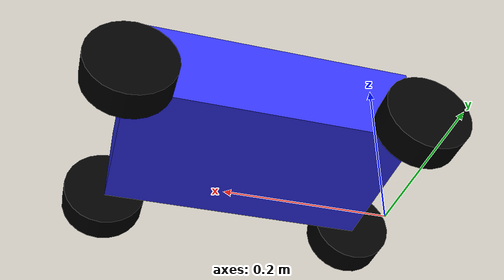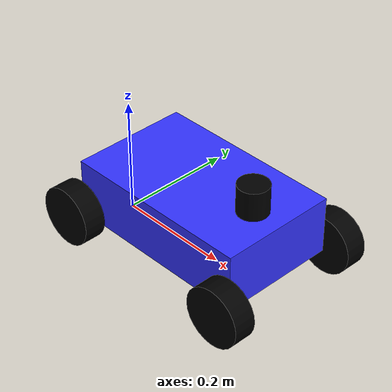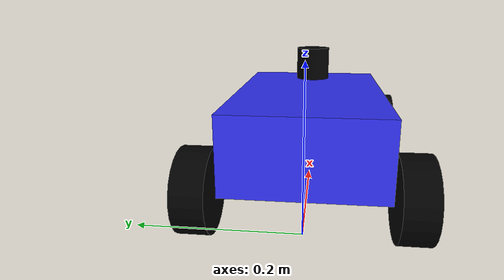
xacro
<?xml version="1.0"?>

<!-- A simple model of the racecar for rviz -->

<robot xmlns:xacro="http://www.ros.org/wiki/xacro" name="racecar">

  <xacro:property name="wheelbase" value="0.3302" />
  <xacro:property name="width" value="0.2032" />
  <xacro:property name="height" value="0.1" />
  <xacro:property name="ground_offset" value="0.04" />
  <xacro:property name="wheel_radius" value="0.0508" />
  <xacro:property name="wheel_length" value="0.0381" />
  <xacro:property name="laser_distance_from_base_link" value="0.275" />
  <xacro:property name="laser_height" value="0.05" />
  <xacro:property name="laser_radius" value="0.026" />
  <xacro:property name="car_name" value="ego_racecar" />

  <xacro:include filename="inertial_macros.xacro"/>
  <!-- For Gazebo simulation -->
  <xacro:include filename="gazebo_control.xacro"/>
  <!-- Lidar -->
  <xacro:include filename="lidar.xacro"/>

  <!-- Colors -->
  <material name="white">
    <color rgba="1.0 1.0 1.0 1.0"/>
  </material>

  <material name="orange">
    <color rgba="1.0 0.3 0.1 1.0"/>
  </material>

  <material name="blue">
    <color rgba="0.2 0.2 1.0 1.0"/>
  </material>

  <material name="black">
    <color rgba="0.0 0.0 0.0 1.0"/>
  </material>

  <material name="red">
    <color rgba="1.0 0.0 0.0 1.0"/>
  </material>

  <!-- Base link -->
  <link name="${car_name}/base_link">
    <visual>
      <origin xyz="${wheelbase/2} 0.0 ${ground_offset+height/2}"/>
      <geometry>
        <box size="${wheelbase} ${width} ${height}"/>
      </geometry>
      <material name="blue"/>
    </visual>
    <collision>
      <origin xyz="${wheelbase/2} 0 ${ground_offset+height/2}"/>
      <geometry>
        <box size="${wheelbase} ${width} ${height}"/>
      </geometry>
    </collision>
    <xacro:inertial_box mass="0.5" x="${wheelbase}" y="${width}" z="${height}">
      <origin xyz="${wheelbase/2} 0.0 ${ground_offset+height/2}" rpy="0.0 0.0 0.0"/>
    </xacro:inertial_box>
  </link>
  <gazebo reference="${car_name}/base_link">
    <material>Gazebo/Blue</material>
  </gazebo>

  <!-- Back left wheel -->
  <joint name="base_to_back_left_wheel" type="continuous">
    <parent link="${car_name}/base_link"/>
    <child link="${car_name}/back_left_wheel"/>
    <origin xyz="0 ${(wheel_length+width)/2} ${wheel_radius}" rpy="-${pi/2} 0.0 0.0"/>
    <axis xyz="0.0 0.0 1.0"/>
  </joint>

  <link name="${car_name}/back_left_wheel">
    <visual>
      <geometry>
        <cylinder radius="${wheel_radius}" length="${wheel_length}"/>
      </geometry>
      <material name="black"/>
    </visual>
    <collision>
      <geometry>
        <cylinder radius="${wheel_radius}" length="${wheel_length}"/>
      </geometry>
    </collision>
    <xacro:inertial_cylinder mass="0.1" length="${wheel_length}" radius="${wheel_radius}">
      <origin xyz="0.0 0.0 0.0" rpy="0.0 0.0 0.0"/>
    </xacro:inertial_cylinder>
  </link>
  <gazebo reference="${car_name}/back_left_wheel">
    <material>Gazebo/Black</material>
    <mu1 value="0.001"/>
    <mu2 value="0.001"/>
  </gazebo>

  <!-- Back right wheel -->
  <joint name="base_to_back_right_wheel" type="continuous">
    <parent link="${car_name}/base_link"/>
    <child link="${car_name}/back_right_wheel"/>
    <origin xyz="0 ${-(wheel_length+width)/2} ${wheel_radius}" rpy="${pi/2} 0.0 0.0"/>
    <axis xyz="0.0 0.0 -1.0"/>
  </joint>

  <link name="${car_name}/back_right_wheel">
    <visual>
      <geometry>
        <cylinder radius="${wheel_radius}" length="${wheel_length}"/>
      </geometry>
      <material name="black"/>
    </visual>
    <collision>
      <geometry>
        <cylinder radius="${wheel_radius}" length="${wheel_length}"/>
      </geometry>
    </collision>
    <xacro:inertial_cylinder mass="0.1" length="${wheel_length}" radius="${wheel_radius}">
      <origin xyz="0.0 0.0 0.0" rpy="0.0 0.0 0.0"/>
    </xacro:inertial_cylinder>
  </link>
  <gazebo reference="${car_name}/back_right_wheel">
    <material>Gazebo/Black</material>
    <mu1 value="0.001"/>
    <mu2 value="0.001"/>
  </gazebo>

  <!-- Front left wheel & hinge -->
  <!-- Left hinge [Joint] -->
  <joint name="base_to_front_left_hinge" type="fixed">
    <parent link="${car_name}/base_link"/>
    <child link="${car_name}/front_left_hinge"/>
    <origin xyz="${wheelbase} ${(wheel_length+width)/2} ${wheel_radius}" rpy="-${pi/2} 0.0 0.0"/>
  </joint>
  <!-- Left hinge [Link] -->
  <link name="${car_name}/front_left_hinge"/>

  <!-- Front left wheel [Joint] -->
  <joint name="front_left_hinge_to_wheel" type="fixed">
    <parent link="${car_name}/front_left_hinge"/>
    <child link="${car_name}/front_left_wheel"/>
    <origin xyz="0.0 0.0 0.0" rpy="0.0 0.0 0.0"/>
    <axis xyz="0.0 0.0 1.0"/>
  </joint>
  <!-- Front left wheel [Link] -->
  <link name="${car_name}/front_left_wheel">
    <visual>
      <geometry>
        <cylinder radius="${wheel_radius}" length="${wheel_length}"/>
      </geometry>
      <material name="black"/>
    </visual>
    <collision>
      <geometry>
        <cylinder radius="${wheel_radius}" length="${wheel_length}"/>
      </geometry>
    </collision>
    <xacro:inertial_cylinder mass="0.1" length="${wheel_length}" radius="${wheel_radius}">
      <origin xyz="0.0 0.0 0.0" rpy="0.0 0.0 0.0"/>
    </xacro:inertial_cylinder>
  </link>
  <gazebo reference="${car_name}/front_left_wheel">
    <material>Gazebo/Black</material>
  </gazebo>

  <!-- Front right wheel & hinge -->
  <!-- Right hinge [Joint] -->
  <joint name="base_to_front_right_hinge" type="fixed">
    <parent link="${car_name}/base_link"/>
    <child link="${car_name}/front_right_hinge"/>
    <origin xyz="${wheelbase} ${-(wheel_length+width)/2} ${wheel_radius}" rpy="${pi/2} 0.0 0.0"/>
  </joint>
  <!-- Right hinge [Link] -->
  <link name="${car_name}/front_right_hinge"/>

  <!-- Front right wheel [Joint] -->
  <joint name="front_right_hinge_to_wheel" type="fixed">
    <parent link="${car_name}/front_right_hinge"/>
    <child link="${car_name}/front_right_wheel"/>
    <origin xyz="0.0 0.0 0.0" rpy="0.0 0.0 0.0"/>
    <axis xyz="0.0 0.0 -1.0"/>
  </joint>
  <!-- Front right wheel [Link] -->
  <link name="${car_name}/front_right_wheel">
    <visual>
      <geometry>
        <cylinder radius="${wheel_radius}" length="${wheel_length}"/>
      </geometry>
      <material name="black"/>
    </visual>
    <collision>
      <geometry>
        <cylinder radius="${wheel_radius}" length="${wheel_length}"/>
      </geometry>
    </collision>
    <xacro:inertial_cylinder mass="0.1" length="${wheel_length}" radius="${wheel_radius}">
      <origin xyz="0.0 0.0 0.0" rpy="0.0 0.0 0.0"/>
    </xacro:inertial_cylinder>
  </link>
  <gazebo reference="${car_name}/front_right_wheel">
    <material>Gazebo/Black</material>
  </gazebo>

</robot>

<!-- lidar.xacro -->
<robot xmlns:xacro="http://www.ros.org/wiki/xacro">

    <joint name="base_to_laser_model" type="fixed">
        <parent link="${car_name}/base_link"/>
        <child link="laser_frame"/>
        <origin xyz="${laser_distance_from_base_link} 0.0 ${ground_offset+height+(laser_height/2)}"/>
    </joint>
    <link name="laser_frame">
        <visual>
            <geometry>
                <cylinder radius="${laser_radius}" length="${laser_height}"/>
            </geometry>
            <material name="black"/>
        </visual>
        <collision>
            <geometry>
                <cylinder radius="${laser_radius}" length="${laser_height}"/>
            </geometry>
        </collision>
        <xacro:inertial_cylinder mass="0.1" length="${laser_height}" radius="${laser_radius}">
             <origin xyz="${laser_distance_from_base_link} 0.0 ${ground_offset+height+(laser_height/2)}" rpy="0.0 0.0 0.0"/>
        </xacro:inertial_cylinder>
    </link>

    <!-- ${car_name}/laser_model -->
    <gazebo reference="laser_frame">
        <material>Gazebo/Red</material>
        <!-- The name of sensor is not fixed -->
        <sensor name="laser" type="ray">
            <!-- The same origin with the link -->
            <pose> 0 0 0 0 0 0 </pose>
            <visualize>true</visualize>
            <update_rate>10</update_rate>
            <ray>
                <scan>
                    <horizontal>
                        <samples>360</samples>
                        <min_angle>-3.14</min_angle>
                        <max_angle>3.14</max_angle>
                    </horizontal>
                </scan>
                <range>
                    <min>0.05</min>
                    <max>25</max>
                </range>
            </ray>
            <!-- The name does not matter -->
            <plugin name="laser_controller" filename="libgazebo_ros_ray_sensor.so">
                <!-- What topic to publish -->
                <ros>
                    <argument>--ros-args --remap ~/out:=scan</argument>
                </ros>
                <output_type>sensor_msgs/LaserScan</output_type>
                <frame_name>laser_frame</frame_name>
            </plugin>
        </sensor>
    </gazebo>

</robot>
